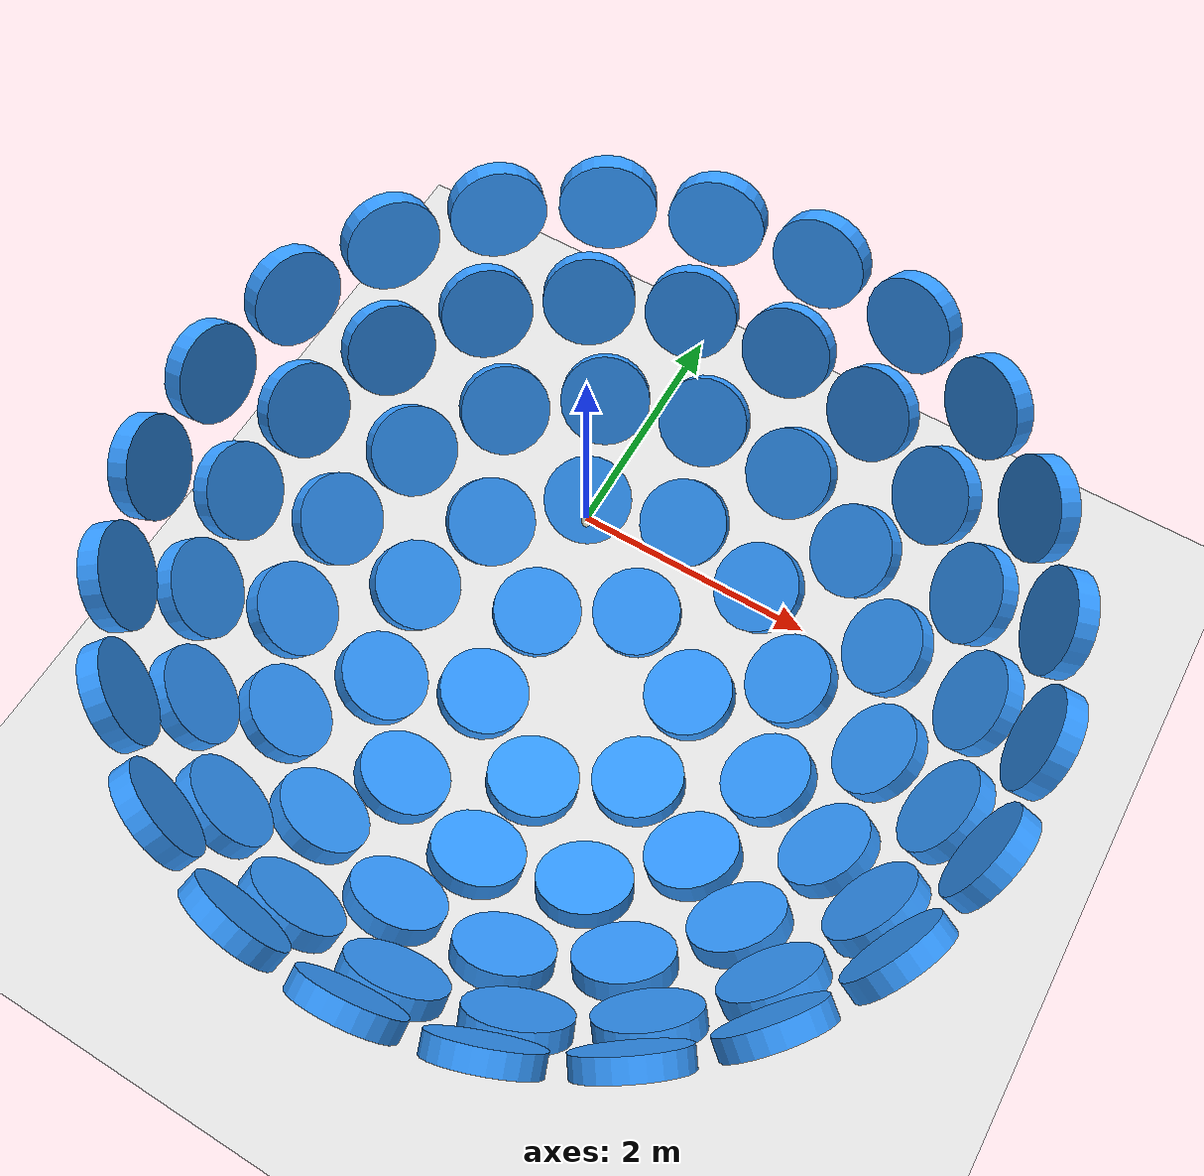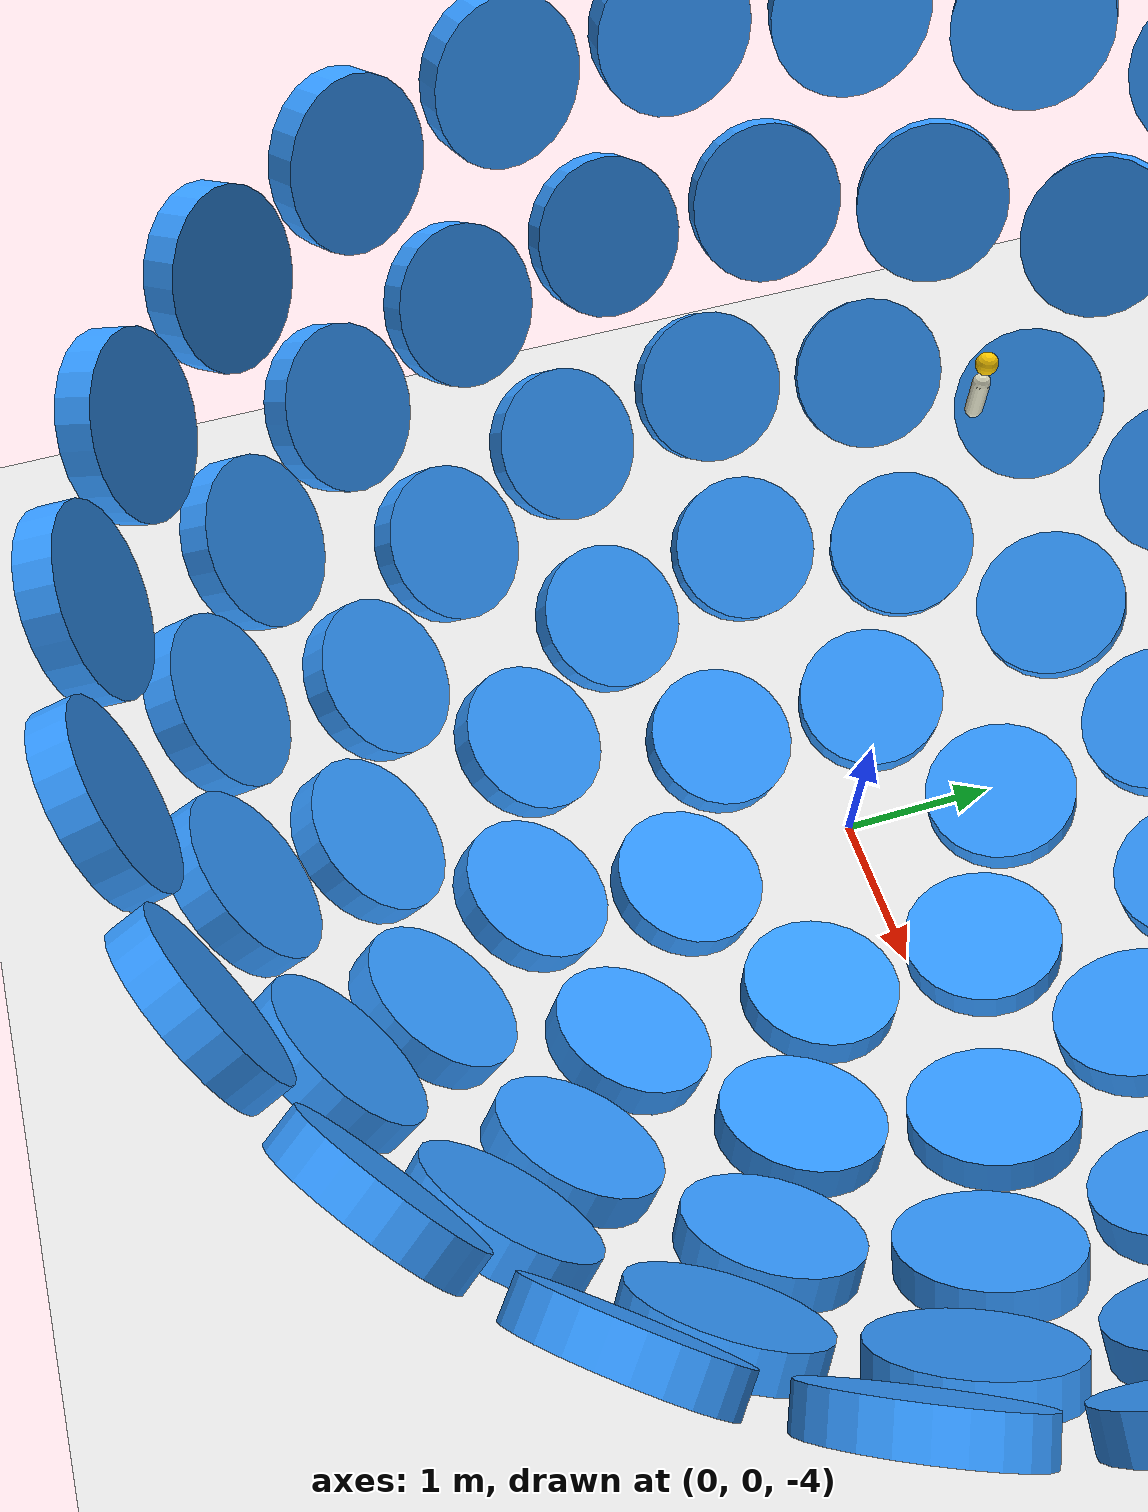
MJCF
<mujoco model="Hemisphere Ultrasonic Array">
    <compiler angle="degree"/>
    <asset>
        <material name="sensor_mat" rgba="0.2 0.6 1 1"/>
        <material name="base_mat" rgba="0.8 0.8 0.8 0.3"/>

    </asset>

    <!-- Thêm khối default này -->
    <default>
        <!-- friction="trượt xoắn lăn" -->
        <!-- Ví dụ: trượt=1.0, xoắn=0.005, lăn=0.01 -->
        <geom friction="1.0 0.005 0.1"/>
    </default>

    <worldbody>
        <light diffuse=".5 .5 .5" pos="0 0 10" dir="0 0 -1"/>
        <geom type="plane" size="10 10 0.1" rgba=".9 .9 .9 1" pos="0 0 -5.0"/>

        <body name="sensor_1" pos="0.9841 0.5682 -4.1471">
            <geom type="cylinder" size="0.50 0.10" zaxis="-0.2289 -0.1321 0.9645" material="sensor_mat"/>
            <site name="site_sensor_1" pos="0 0 0" zaxis="-0.2289 -0.1321 0.9645" size="0.05" rgba="1 0 0 1"/>
        </body>

        <body name="sensor_2" pos="0.0000 1.1363 -4.1471">
            <geom type="cylinder" size="0.50 0.10" zaxis="-0.0000 -0.2643 0.9645" material="sensor_mat"/>
            <site name="site_sensor_2" pos="0 0 0" zaxis="-0.0000 -0.2643 0.9645" size="0.05" rgba="1 0 0 1"/>
        </body>

        <body name="sensor_3" pos="-0.9841 0.5682 -4.1471">
            <geom type="cylinder" size="0.50 0.10" zaxis="0.2289 -0.1321 0.9645" material="sensor_mat"/>
            <site name="site_sensor_3" pos="0 0 0" zaxis="0.2289 -0.1321 0.9645" size="0.05" rgba="1 0 0 1"/>
        </body>

        <body name="sensor_4" pos="-0.9841 -0.5682 -4.1471">
            <geom type="cylinder" size="0.50 0.10" zaxis="0.2289 0.1321 0.9645" material="sensor_mat"/>
            <site name="site_sensor_4" pos="0 0 0" zaxis="0.2289 0.1321 0.9645" size="0.05" rgba="1 0 0 1"/>
        </body>

        <body name="sensor_5" pos="-0.0000 -1.1363 -4.1471">
            <geom type="cylinder" size="0.50 0.10" zaxis="0.0000 0.2643 0.9645" material="sensor_mat"/>
            <site name="site_sensor_5" pos="0 0 0" zaxis="0.0000 0.2643 0.9645" size="0.05" rgba="1 0 0 1"/>
        </body>

        <body name="sensor_6" pos="0.9841 -0.5682 -4.1471">
            <geom type="cylinder" size="0.50 0.10" zaxis="-0.2289 0.1321 0.9645" material="sensor_mat"/>
            <site name="site_sensor_6" pos="0 0 0" zaxis="-0.2289 0.1321 0.9645" size="0.05" rgba="1 0 0 1"/>
        </body>

        <body name="sensor_7" pos="2.1919 0.0000 -3.6994">
            <geom type="cylinder" size="0.50 0.10" zaxis="-0.5097 -0.0000 0.8603" material="sensor_mat"/>
            <site name="site_sensor_7" pos="0 0 0" zaxis="-0.5097 -0.0000 0.8603" size="0.05" rgba="1 0 0 1"/>
        </body>

        <body name="sensor_8" pos="1.8982 1.0959 -3.6994">
            <geom type="cylinder" size="0.50 0.10" zaxis="-0.4414 -0.2549 0.8603" material="sensor_mat"/>
            <site name="site_sensor_8" pos="0 0 0" zaxis="-0.4414 -0.2549 0.8603" size="0.05" rgba="1 0 0 1"/>
        </body>

        <body name="sensor_9" pos="1.0959 1.8982 -3.6994">
            <geom type="cylinder" size="0.50 0.10" zaxis="-0.2549 -0.4414 0.8603" material="sensor_mat"/>
            <site name="site_sensor_9" pos="0 0 0" zaxis="-0.2549 -0.4414 0.8603" size="0.05" rgba="1 0 0 1"/>
        </body>

        <body name="sensor_10" pos="0.0000 2.1919 -3.6994">
            <geom type="cylinder" size="0.50 0.10" zaxis="-0.0000 -0.5097 0.8603" material="sensor_mat"/>
            <site name="site_sensor_10" pos="0 0 0" zaxis="-0.0000 -0.5097 0.8603" size="0.05" rgba="1 0 0 1"/>
        </body>

        <body name="sensor_11" pos="-1.0959 1.8982 -3.6994">
            <geom type="cylinder" size="0.50 0.10" zaxis="0.2549 -0.4414 0.8603" material="sensor_mat"/>
            <site name="site_sensor_11" pos="0 0 0" zaxis="0.2549 -0.4414 0.8603" size="0.05" rgba="1 0 0 1"/>
        </body>

        <body name="sensor_12" pos="-1.8982 1.0959 -3.6994">
            <geom type="cylinder" size="0.50 0.10" zaxis="0.4414 -0.2549 0.8603" material="sensor_mat"/>
            <site name="site_sensor_12" pos="0 0 0" zaxis="0.4414 -0.2549 0.8603" size="0.05" rgba="1 0 0 1"/>
        </body>

        <body name="sensor_13" pos="-2.1919 0.0000 -3.6994">
            <geom type="cylinder" size="0.50 0.10" zaxis="0.5097 -0.0000 0.8603" material="sensor_mat"/>
            <site name="site_sensor_13" pos="0 0 0" zaxis="0.5097 -0.0000 0.8603" size="0.05" rgba="1 0 0 1"/>
        </body>

        <body name="sensor_14" pos="-1.8982 -1.0959 -3.6994">
            <geom type="cylinder" size="0.50 0.10" zaxis="0.4414 0.2549 0.8603" material="sensor_mat"/>
            <site name="site_sensor_14" pos="0 0 0" zaxis="0.4414 0.2549 0.8603" size="0.05" rgba="1 0 0 1"/>
        </body>

        <body name="sensor_15" pos="-1.0959 -1.8982 -3.6994">
            <geom type="cylinder" size="0.50 0.10" zaxis="0.2549 0.4414 0.8603" material="sensor_mat"/>
            <site name="site_sensor_15" pos="0 0 0" zaxis="0.2549 0.4414 0.8603" size="0.05" rgba="1 0 0 1"/>
        </body>

        <body name="sensor_16" pos="-0.0000 -2.1919 -3.6994">
            <geom type="cylinder" size="0.50 0.10" zaxis="0.0000 0.5097 0.8603" material="sensor_mat"/>
            <site name="site_sensor_16" pos="0 0 0" zaxis="0.0000 0.5097 0.8603" size="0.05" rgba="1 0 0 1"/>
        </body>

        <body name="sensor_17" pos="1.0959 -1.8982 -3.6994">
            <geom type="cylinder" size="0.50 0.10" zaxis="-0.2549 0.4414 0.8603" material="sensor_mat"/>
            <site name="site_sensor_17" pos="0 0 0" zaxis="-0.2549 0.4414 0.8603" size="0.05" rgba="1 0 0 1"/>
        </body>

        <body name="sensor_18" pos="1.8982 -1.0959 -3.6994">
            <geom type="cylinder" size="0.50 0.10" zaxis="-0.4414 0.2549 0.8603" material="sensor_mat"/>
            <site name="site_sensor_18" pos="0 0 0" zaxis="-0.4414 0.2549 0.8603" size="0.05" rgba="1 0 0 1"/>
        </body>

        <body name="sensor_19" pos="3.0389 0.5681 -2.9887">
            <geom type="cylinder" size="0.50 0.10" zaxis="-0.7067 -0.1321 0.6950" material="sensor_mat"/>
            <site name="site_sensor_19" pos="0 0 0" zaxis="-0.7067 -0.1321 0.6950" size="0.05" rgba="1 0 0 1"/>
        </body>

        <body name="sensor_20" pos="2.6285 1.6275 -2.9887">
            <geom type="cylinder" size="0.50 0.10" zaxis="-0.6113 -0.3785 0.6950" material="sensor_mat"/>
            <site name="site_sensor_20" pos="0 0 0" zaxis="-0.6113 -0.3785 0.6950" size="0.05" rgba="1 0 0 1"/>
        </body>

        <body name="sensor_21" pos="1.8631 2.4671 -2.9887">
            <geom type="cylinder" size="0.50 0.10" zaxis="-0.4333 -0.5738 0.6950" material="sensor_mat"/>
            <site name="site_sensor_21" pos="0 0 0" zaxis="-0.4333 -0.5738 0.6950" size="0.05" rgba="1 0 0 1"/>
        </body>

        <body name="sensor_22" pos="0.8461 2.9736 -2.9887">
            <geom type="cylinder" size="0.50 0.10" zaxis="-0.1968 -0.6915 0.6950" material="sensor_mat"/>
            <site name="site_sensor_22" pos="0 0 0" zaxis="-0.1968 -0.6915 0.6950" size="0.05" rgba="1 0 0 1"/>
        </body>

        <body name="sensor_23" pos="-0.2853 3.0784 -2.9887">
            <geom type="cylinder" size="0.50 0.10" zaxis="0.0663 -0.7159 0.6950" material="sensor_mat"/>
            <site name="site_sensor_23" pos="0 0 0" zaxis="0.0663 -0.7159 0.6950" size="0.05" rgba="1 0 0 1"/>
        </body>

        <body name="sensor_24" pos="-1.3780 2.7675 -2.9887">
            <geom type="cylinder" size="0.50 0.10" zaxis="0.3205 -0.6436 0.6950" material="sensor_mat"/>
            <site name="site_sensor_24" pos="0 0 0" zaxis="0.3205 -0.6436 0.6950" size="0.05" rgba="1 0 0 1"/>
        </body>

        <body name="sensor_25" pos="-2.2847 2.0828 -2.9887">
            <geom type="cylinder" size="0.50 0.10" zaxis="0.5313 -0.4844 0.6950" material="sensor_mat"/>
            <site name="site_sensor_25" pos="0 0 0" zaxis="0.5313 -0.4844 0.6950" size="0.05" rgba="1 0 0 1"/>
        </body>

        <body name="sensor_26" pos="-2.8828 1.1168 -2.9887">
            <geom type="cylinder" size="0.50 0.10" zaxis="0.6704 -0.2597 0.6950" material="sensor_mat"/>
            <site name="site_sensor_26" pos="0 0 0" zaxis="0.6704 -0.2597 0.6950" size="0.05" rgba="1 0 0 1"/>
        </body>

        <body name="sensor_27" pos="-3.0916 0.0000 -2.9887">
            <geom type="cylinder" size="0.50 0.10" zaxis="0.7190 -0.0000 0.6950" material="sensor_mat"/>
            <site name="site_sensor_27" pos="0 0 0" zaxis="0.7190 -0.0000 0.6950" size="0.05" rgba="1 0 0 1"/>
        </body>

        <body name="sensor_28" pos="-2.8828 -1.1168 -2.9887">
            <geom type="cylinder" size="0.50 0.10" zaxis="0.6704 0.2597 0.6950" material="sensor_mat"/>
            <site name="site_sensor_28" pos="0 0 0" zaxis="0.6704 0.2597 0.6950" size="0.05" rgba="1 0 0 1"/>
        </body>

        <body name="sensor_29" pos="-2.2847 -2.0828 -2.9887">
            <geom type="cylinder" size="0.50 0.10" zaxis="0.5313 0.4844 0.6950" material="sensor_mat"/>
            <site name="site_sensor_29" pos="0 0 0" zaxis="0.5313 0.4844 0.6950" size="0.05" rgba="1 0 0 1"/>
        </body>

        <body name="sensor_30" pos="-1.3780 -2.7675 -2.9887">
            <geom type="cylinder" size="0.50 0.10" zaxis="0.3205 0.6436 0.6950" material="sensor_mat"/>
            <site name="site_sensor_30" pos="0 0 0" zaxis="0.3205 0.6436 0.6950" size="0.05" rgba="1 0 0 1"/>
        </body>

        <body name="sensor_31" pos="-0.2853 -3.0784 -2.9887">
            <geom type="cylinder" size="0.50 0.10" zaxis="0.0663 0.7159 0.6950" material="sensor_mat"/>
            <site name="site_sensor_31" pos="0 0 0" zaxis="0.0663 0.7159 0.6950" size="0.05" rgba="1 0 0 1"/>
        </body>

        <body name="sensor_32" pos="0.8461 -2.9736 -2.9887">
            <geom type="cylinder" size="0.50 0.10" zaxis="-0.1968 0.6915 0.6950" material="sensor_mat"/>
            <site name="site_sensor_32" pos="0 0 0" zaxis="-0.1968 0.6915 0.6950" size="0.05" rgba="1 0 0 1"/>
        </body>

        <body name="sensor_33" pos="1.8631 -2.4671 -2.9887">
            <geom type="cylinder" size="0.50 0.10" zaxis="-0.4333 0.5738 0.6950" material="sensor_mat"/>
            <site name="site_sensor_33" pos="0 0 0" zaxis="-0.4333 0.5738 0.6950" size="0.05" rgba="1 0 0 1"/>
        </body>

        <body name="sensor_34" pos="2.6285 -1.6275 -2.9887">
            <geom type="cylinder" size="0.50 0.10" zaxis="-0.6113 0.3785 0.6950" material="sensor_mat"/>
            <site name="site_sensor_34" pos="0 0 0" zaxis="-0.6113 0.3785 0.6950" size="0.05" rgba="1 0 0 1"/>
        </body>

        <body name="sensor_35" pos="3.0389 -0.5681 -2.9887">
            <geom type="cylinder" size="0.50 0.10" zaxis="-0.7067 0.1321 0.6950" material="sensor_mat"/>
            <site name="site_sensor_35" pos="0 0 0" zaxis="-0.7067 0.1321 0.6950" size="0.05" rgba="1 0 0 1"/>
        </body>

        <body name="sensor_36" pos="3.7715 0.0000 -2.0654">
            <geom type="cylinder" size="0.50 0.10" zaxis="-0.8771 -0.0000 0.4803" material="sensor_mat"/>
            <site name="site_sensor_36" pos="0 0 0" zaxis="-0.8771 -0.0000 0.4803" size="0.05" rgba="1 0 0 1"/>
        </body>

        <body name="sensor_37" pos="3.6039 1.1117 -2.0654">
            <geom type="cylinder" size="0.50 0.10" zaxis="-0.8381 -0.2585 0.4803" material="sensor_mat"/>
            <site name="site_sensor_37" pos="0 0 0" zaxis="-0.8381 -0.2585 0.4803" size="0.05" rgba="1 0 0 1"/>
        </body>

        <body name="sensor_38" pos="3.1161 2.1246 -2.0654">
            <geom type="cylinder" size="0.50 0.10" zaxis="-0.7247 -0.4941 0.4803" material="sensor_mat"/>
            <site name="site_sensor_38" pos="0 0 0" zaxis="-0.7247 -0.4941 0.4803" size="0.05" rgba="1 0 0 1"/>
        </body>

        <body name="sensor_39" pos="2.3515 2.9487 -2.0654">
            <geom type="cylinder" size="0.50 0.10" zaxis="-0.5469 -0.6857 0.4803" material="sensor_mat"/>
            <site name="site_sensor_39" pos="0 0 0" zaxis="-0.5469 -0.6857 0.4803" size="0.05" rgba="1 0 0 1"/>
        </body>

        <body name="sensor_40" pos="1.3779 3.5108 -2.0654">
            <geom type="cylinder" size="0.50 0.10" zaxis="-0.3204 -0.8165 0.4803" material="sensor_mat"/>
            <site name="site_sensor_40" pos="0 0 0" zaxis="-0.3204 -0.8165 0.4803" size="0.05" rgba="1 0 0 1"/>
        </body>

        <body name="sensor_41" pos="0.2818 3.7609 -2.0654">
            <geom type="cylinder" size="0.50 0.10" zaxis="-0.0655 -0.8746 0.4803" material="sensor_mat"/>
            <site name="site_sensor_41" pos="0 0 0" zaxis="-0.0655 -0.8746 0.4803" size="0.05" rgba="1 0 0 1"/>
        </body>

        <body name="sensor_42" pos="-0.8392 3.6769 -2.0654">
            <geom type="cylinder" size="0.50 0.10" zaxis="0.1952 -0.8551 0.4803" material="sensor_mat"/>
            <site name="site_sensor_42" pos="0 0 0" zaxis="0.1952 -0.8551 0.4803" size="0.05" rgba="1 0 0 1"/>
        </body>

        <body name="sensor_43" pos="-1.8857 3.2662 -2.0654">
            <geom type="cylinder" size="0.50 0.10" zaxis="0.4385 -0.7596 0.4803" material="sensor_mat"/>
            <site name="site_sensor_43" pos="0 0 0" zaxis="0.4385 -0.7596 0.4803" size="0.05" rgba="1 0 0 1"/>
        </body>

        <body name="sensor_44" pos="-2.7647 2.5653 -2.0654">
            <geom type="cylinder" size="0.50 0.10" zaxis="0.6430 -0.5966 0.4803" material="sensor_mat"/>
            <site name="site_sensor_44" pos="0 0 0" zaxis="0.6430 -0.5966 0.4803" size="0.05" rgba="1 0 0 1"/>
        </body>

        <body name="sensor_45" pos="-3.3980 1.6364 -2.0654">
            <geom type="cylinder" size="0.50 0.10" zaxis="0.7902 -0.3806 0.4803" material="sensor_mat"/>
            <site name="site_sensor_45" pos="0 0 0" zaxis="0.7902 -0.3806 0.4803" size="0.05" rgba="1 0 0 1"/>
        </body>

        <body name="sensor_46" pos="-3.7294 0.5621 -2.0654">
            <geom type="cylinder" size="0.50 0.10" zaxis="0.8673 -0.1307 0.4803" material="sensor_mat"/>
            <site name="site_sensor_46" pos="0 0 0" zaxis="0.8673 -0.1307 0.4803" size="0.05" rgba="1 0 0 1"/>
        </body>

        <body name="sensor_47" pos="-3.7294 -0.5621 -2.0654">
            <geom type="cylinder" size="0.50 0.10" zaxis="0.8673 0.1307 0.4803" material="sensor_mat"/>
            <site name="site_sensor_47" pos="0 0 0" zaxis="0.8673 0.1307 0.4803" size="0.05" rgba="1 0 0 1"/>
        </body>

        <body name="sensor_48" pos="-3.3980 -1.6364 -2.0654">
            <geom type="cylinder" size="0.50 0.10" zaxis="0.7902 0.3806 0.4803" material="sensor_mat"/>
            <site name="site_sensor_48" pos="0 0 0" zaxis="0.7902 0.3806 0.4803" size="0.05" rgba="1 0 0 1"/>
        </body>

        <body name="sensor_49" pos="-2.7647 -2.5653 -2.0654">
            <geom type="cylinder" size="0.50 0.10" zaxis="0.6430 0.5966 0.4803" material="sensor_mat"/>
            <site name="site_sensor_49" pos="0 0 0" zaxis="0.6430 0.5966 0.4803" size="0.05" rgba="1 0 0 1"/>
        </body>

        <body name="sensor_50" pos="-1.8857 -3.2662 -2.0654">
            <geom type="cylinder" size="0.50 0.10" zaxis="0.4385 0.7596 0.4803" material="sensor_mat"/>
            <site name="site_sensor_50" pos="0 0 0" zaxis="0.4385 0.7596 0.4803" size="0.05" rgba="1 0 0 1"/>
        </body>

        <body name="sensor_51" pos="-0.8392 -3.6769 -2.0654">
            <geom type="cylinder" size="0.50 0.10" zaxis="0.1952 0.8551 0.4803" material="sensor_mat"/>
            <site name="site_sensor_51" pos="0 0 0" zaxis="0.1952 0.8551 0.4803" size="0.05" rgba="1 0 0 1"/>
        </body>

        <body name="sensor_52" pos="0.2818 -3.7609 -2.0654">
            <geom type="cylinder" size="0.50 0.10" zaxis="-0.0655 0.8746 0.4803" material="sensor_mat"/>
            <site name="site_sensor_52" pos="0 0 0" zaxis="-0.0655 0.8746 0.4803" size="0.05" rgba="1 0 0 1"/>
        </body>

        <body name="sensor_53" pos="1.3779 -3.5108 -2.0654">
            <geom type="cylinder" size="0.50 0.10" zaxis="-0.3204 0.8165 0.4803" material="sensor_mat"/>
            <site name="site_sensor_53" pos="0 0 0" zaxis="-0.3204 0.8165 0.4803" size="0.05" rgba="1 0 0 1"/>
        </body>

        <body name="sensor_54" pos="2.3515 -2.9487 -2.0654">
            <geom type="cylinder" size="0.50 0.10" zaxis="-0.5469 0.6857 0.4803" material="sensor_mat"/>
            <site name="site_sensor_54" pos="0 0 0" zaxis="-0.5469 0.6857 0.4803" size="0.05" rgba="1 0 0 1"/>
        </body>

        <body name="sensor_55" pos="3.1161 -2.1246 -2.0654">
            <geom type="cylinder" size="0.50 0.10" zaxis="-0.7247 0.4941 0.4803" material="sensor_mat"/>
            <site name="site_sensor_55" pos="0 0 0" zaxis="-0.7247 0.4941 0.4803" size="0.05" rgba="1 0 0 1"/>
        </body>

        <body name="sensor_56" pos="3.6039 -1.1117 -2.0654">
            <geom type="cylinder" size="0.50 0.10" zaxis="-0.8381 0.2585 0.4803" material="sensor_mat"/>
            <site name="site_sensor_56" pos="0 0 0" zaxis="-0.8381 0.2585 0.4803" size="0.05" rgba="1 0 0 1"/>
        </body>

        <body name="sensor_57" pos="4.1443 0.5696 -0.9953">
            <geom type="cylinder" size="0.50 0.10" zaxis="-0.9638 -0.1325 0.2315" material="sensor_mat"/>
            <site name="site_sensor_57" pos="0 0 0" zaxis="-0.9638 -0.1325 0.2315" size="0.05" rgba="1 0 0 1"/>
        </body>

        <body name="sensor_58" pos="3.8369 1.6666 -0.9953">
            <geom type="cylinder" size="0.50 0.10" zaxis="-0.8923 -0.3876 0.2315" material="sensor_mat"/>
            <site name="site_sensor_58" pos="0 0 0" zaxis="-0.8923 -0.3876 0.2315" size="0.05" rgba="1 0 0 1"/>
        </body>

        <body name="sensor_59" pos="3.2450 2.6400 -0.9953">
            <geom type="cylinder" size="0.50 0.10" zaxis="-0.7546 -0.6139 0.2315" material="sensor_mat"/>
            <site name="site_sensor_59" pos="0 0 0" zaxis="-0.7546 -0.6139 0.2315" size="0.05" rgba="1 0 0 1"/>
        </body>

        <body name="sensor_60" pos="2.4124 3.4176 -0.9953">
            <geom type="cylinder" size="0.50 0.10" zaxis="-0.5610 -0.7948 0.2315" material="sensor_mat"/>
            <site name="site_sensor_60" pos="0 0 0" zaxis="-0.5610 -0.7948 0.2315" size="0.05" rgba="1 0 0 1"/>
        </body>

        <body name="sensor_61" pos="1.4009 3.9417 -0.9953">
            <geom type="cylinder" size="0.50 0.10" zaxis="-0.3258 -0.9167 0.2315" material="sensor_mat"/>
            <site name="site_sensor_61" pos="0 0 0" zaxis="-0.3258 -0.9167 0.2315" size="0.05" rgba="1 0 0 1"/>
        </body>

        <body name="sensor_62" pos="0.2855 4.1735 -0.9953">
            <geom type="cylinder" size="0.50 0.10" zaxis="-0.0664 -0.9706 0.2315" material="sensor_mat"/>
            <site name="site_sensor_62" pos="0 0 0" zaxis="-0.0664 -0.9706 0.2315" size="0.05" rgba="1 0 0 1"/>
        </body>

        <body name="sensor_63" pos="-0.8511 4.0957 -0.9953">
            <geom type="cylinder" size="0.50 0.10" zaxis="0.1979 -0.9525 0.2315" material="sensor_mat"/>
            <site name="site_sensor_63" pos="0 0 0" zaxis="0.1979 -0.9525 0.2315" size="0.05" rgba="1 0 0 1"/>
        </body>

        <body name="sensor_64" pos="-1.9246 3.7142 -0.9953">
            <geom type="cylinder" size="0.50 0.10" zaxis="0.4476 -0.8638 0.2315" material="sensor_mat"/>
            <site name="site_sensor_64" pos="0 0 0" zaxis="0.4476 -0.8638 0.2315" size="0.05" rgba="1 0 0 1"/>
        </body>

        <body name="sensor_65" pos="-2.8553 3.0572 -0.9953">
            <geom type="cylinder" size="0.50 0.10" zaxis="0.6640 -0.7110 0.2315" material="sensor_mat"/>
            <site name="site_sensor_65" pos="0 0 0" zaxis="0.6640 -0.7110 0.2315" size="0.05" rgba="1 0 0 1"/>
        </body>

        <body name="sensor_66" pos="-3.5742 2.1735 -0.9953">
            <geom type="cylinder" size="0.50 0.10" zaxis="0.8312 -0.5055 0.2315" material="sensor_mat"/>
            <site name="site_sensor_66" pos="0 0 0" zaxis="0.8312 -0.5055 0.2315" size="0.05" rgba="1 0 0 1"/>
        </body>

        <body name="sensor_67" pos="-4.0281 1.1286 -0.9953">
            <geom type="cylinder" size="0.50 0.10" zaxis="0.9368 -0.2625 0.2315" material="sensor_mat"/>
            <site name="site_sensor_67" pos="0 0 0" zaxis="0.9368 -0.2625 0.2315" size="0.05" rgba="1 0 0 1"/>
        </body>

        <body name="sensor_68" pos="-4.1832 0.0000 -0.9953">
            <geom type="cylinder" size="0.50 0.10" zaxis="0.9728 -0.0000 0.2315" material="sensor_mat"/>
            <site name="site_sensor_68" pos="0 0 0" zaxis="0.9728 -0.0000 0.2315" size="0.05" rgba="1 0 0 1"/>
        </body>

        <body name="sensor_69" pos="-4.0281 -1.1286 -0.9953">
            <geom type="cylinder" size="0.50 0.10" zaxis="0.9368 0.2625 0.2315" material="sensor_mat"/>
            <site name="site_sensor_69" pos="0 0 0" zaxis="0.9368 0.2625 0.2315" size="0.05" rgba="1 0 0 1"/>
        </body>

        <body name="sensor_70" pos="-3.5742 -2.1735 -0.9953">
            <geom type="cylinder" size="0.50 0.10" zaxis="0.8312 0.5055 0.2315" material="sensor_mat"/>
            <site name="site_sensor_70" pos="0 0 0" zaxis="0.8312 0.5055 0.2315" size="0.05" rgba="1 0 0 1"/>
        </body>

        <body name="sensor_71" pos="-2.8553 -3.0572 -0.9953">
            <geom type="cylinder" size="0.50 0.10" zaxis="0.6640 0.7110 0.2315" material="sensor_mat"/>
            <site name="site_sensor_71" pos="0 0 0" zaxis="0.6640 0.7110 0.2315" size="0.05" rgba="1 0 0 1"/>
        </body>

        <body name="sensor_72" pos="-1.9246 -3.7142 -0.9953">
            <geom type="cylinder" size="0.50 0.10" zaxis="0.4476 0.8638 0.2315" material="sensor_mat"/>
            <site name="site_sensor_72" pos="0 0 0" zaxis="0.4476 0.8638 0.2315" size="0.05" rgba="1 0 0 1"/>
        </body>

        <body name="sensor_73" pos="-0.8511 -4.0957 -0.9953">
            <geom type="cylinder" size="0.50 0.10" zaxis="0.1979 0.9525 0.2315" material="sensor_mat"/>
            <site name="site_sensor_73" pos="0 0 0" zaxis="0.1979 0.9525 0.2315" size="0.05" rgba="1 0 0 1"/>
        </body>

        <body name="sensor_74" pos="0.2855 -4.1735 -0.9953">
            <geom type="cylinder" size="0.50 0.10" zaxis="-0.0664 0.9706 0.2315" material="sensor_mat"/>
            <site name="site_sensor_74" pos="0 0 0" zaxis="-0.0664 0.9706 0.2315" size="0.05" rgba="1 0 0 1"/>
        </body>

        <body name="sensor_75" pos="1.4009 -3.9417 -0.9953">
            <geom type="cylinder" size="0.50 0.10" zaxis="-0.3258 0.9167 0.2315" material="sensor_mat"/>
            <site name="site_sensor_75" pos="0 0 0" zaxis="-0.3258 0.9167 0.2315" size="0.05" rgba="1 0 0 1"/>
        </body>

        <body name="sensor_76" pos="2.4124 -3.4176 -0.9953">
            <geom type="cylinder" size="0.50 0.10" zaxis="-0.5610 0.7948 0.2315" material="sensor_mat"/>
            <site name="site_sensor_76" pos="0 0 0" zaxis="-0.5610 0.7948 0.2315" size="0.05" rgba="1 0 0 1"/>
        </body>

        <body name="sensor_77" pos="3.2450 -2.6400 -0.9953">
            <geom type="cylinder" size="0.50 0.10" zaxis="-0.7546 0.6139 0.2315" material="sensor_mat"/>
            <site name="site_sensor_77" pos="0 0 0" zaxis="-0.7546 0.6139 0.2315" size="0.05" rgba="1 0 0 1"/>
        </body>

        <body name="sensor_78" pos="3.8369 -1.6666 -0.9953">
            <geom type="cylinder" size="0.50 0.10" zaxis="-0.8923 0.3876 0.2315" material="sensor_mat"/>
            <site name="site_sensor_78" pos="0 0 0" zaxis="-0.8923 0.3876 0.2315" size="0.05" rgba="1 0 0 1"/>
        </body>

        <body name="sensor_79" pos="4.1443 -0.5696 -0.9953">
            <geom type="cylinder" size="0.50 0.10" zaxis="-0.9638 0.1325 0.2315" material="sensor_mat"/>
            <site name="site_sensor_79" pos="0 0 0" zaxis="-0.9638 0.1325 0.2315" size="0.05" rgba="1 0 0 1"/>
        </body>

        <body name="test_rice" pos="0 0 0.01">
            <freejoint/>
            <!-- Capsule size in MuJoCo is "radius half-length" -->
            <!-- 1mm radius (2mm wide) and 2.5mm half-length (5mm cylinder + 2mm caps = 7mm total length) -->

            <geom type="capsule" size="0.04 0.08" mass="0.0001" rgba="0.9 0.9 0.8 1"/>
        </body>

        <body name="test_ball" pos="0 0 0.2">
            <!-- freejoint makes it dynamic so it falls under gravity -->
            <freejoint/>
            <!-- size is the radius in meters (5cm)(scaling up), mass is in kg (1 gram) -->
            <geom type="sphere" size="0.05" mass="0.001" rgba="1 0.8 0 1"/>
        </body>

    </worldbody>

    <sensor>
        <rangefinder name="ultra_1" site="site_sensor_1" cutoff="3.0" noise="0.01"/>
        <rangefinder name="ultra_2" site="site_sensor_2" cutoff="3.0" noise="0.01"/>
        <rangefinder name="ultra_3" site="site_sensor_3" cutoff="3.0" noise="0.01"/>
        <rangefinder name="ultra_4" site="site_sensor_4" cutoff="3.0" noise="0.01"/>
        <rangefinder name="ultra_5" site="site_sensor_5" cutoff="3.0" noise="0.01"/>
        <rangefinder name="ultra_6" site="site_sensor_6" cutoff="3.0" noise="0.01"/>
        <rangefinder name="ultra_7" site="site_sensor_7" cutoff="3.0" noise="0.01"/>
        <rangefinder name="ultra_8" site="site_sensor_8" cutoff="3.0" noise="0.01"/>
        <rangefinder name="ultra_9" site="site_sensor_9" cutoff="3.0" noise="0.01"/>
        <rangefinder name="ultra_10" site="site_sensor_10" cutoff="3.0" noise="0.01"/>
        <rangefinder name="ultra_11" site="site_sensor_11" cutoff="3.0" noise="0.01"/>
        <rangefinder name="ultra_12" site="site_sensor_12" cutoff="3.0" noise="0.01"/>
        <rangefinder name="ultra_13" site="site_sensor_13" cutoff="3.0" noise="0.01"/>
        <rangefinder name="ultra_14" site="site_sensor_14" cutoff="3.0" noise="0.01"/>
        <rangefinder name="ultra_15" site="site_sensor_15" cutoff="3.0" noise="0.01"/>
        <rangefinder name="ultra_16" site="site_sensor_16" cutoff="3.0" noise="0.01"/>
        <rangefinder name="ultra_17" site="site_sensor_17" cutoff="3.0" noise="0.01"/>
        <rangefinder name="ultra_18" site="site_sensor_18" cutoff="3.0" noise="0.01"/>
        <rangefinder name="ultra_19" site="site_sensor_19" cutoff="3.0" noise="0.01"/>
        <rangefinder name="ultra_20" site="site_sensor_20" cutoff="3.0" noise="0.01"/>
        <rangefinder name="ultra_21" site="site_sensor_21" cutoff="3.0" noise="0.01"/>
        <rangefinder name="ultra_22" site="site_sensor_22" cutoff="3.0" noise="0.01"/>
        <rangefinder name="ultra_23" site="site_sensor_23" cutoff="3.0" noise="0.01"/>
        <rangefinder name="ultra_24" site="site_sensor_24" cutoff="3.0" noise="0.01"/>
        <rangefinder name="ultra_25" site="site_sensor_25" cutoff="3.0" noise="0.01"/>
        <rangefinder name="ultra_26" site="site_sensor_26" cutoff="3.0" noise="0.01"/>
        <rangefinder name="ultra_27" site="site_sensor_27" cutoff="3.0" noise="0.01"/>
        <rangefinder name="ultra_28" site="site_sensor_28" cutoff="3.0" noise="0.01"/>
        <rangefinder name="ultra_29" site="site_sensor_29" cutoff="3.0" noise="0.01"/>
        <rangefinder name="ultra_30" site="site_sensor_30" cutoff="3.0" noise="0.01"/>
        <rangefinder name="ultra_31" site="site_sensor_31" cutoff="3.0" noise="0.01"/>
        <rangefinder name="ultra_32" site="site_sensor_32" cutoff="3.0" noise="0.01"/>
        <rangefinder name="ultra_33" site="site_sensor_33" cutoff="3.0" noise="0.01"/>
        <rangefinder name="ultra_34" site="site_sensor_34" cutoff="3.0" noise="0.01"/>
        <rangefinder name="ultra_35" site="site_sensor_35" cutoff="3.0" noise="0.01"/>
        <rangefinder name="ultra_36" site="site_sensor_36" cutoff="3.0" noise="0.01"/>
        <rangefinder name="ultra_37" site="site_sensor_37" cutoff="3.0" noise="0.01"/>
        <rangefinder name="ultra_38" site="site_sensor_38" cutoff="3.0" noise="0.01"/>
        <rangefinder name="ultra_39" site="site_sensor_39" cutoff="3.0" noise="0.01"/>
        <rangefinder name="ultra_40" site="site_sensor_40" cutoff="3.0" noise="0.01"/>
        <rangefinder name="ultra_41" site="site_sensor_41" cutoff="3.0" noise="0.01"/>
        <rangefinder name="ultra_42" site="site_sensor_42" cutoff="3.0" noise="0.01"/>
        <rangefinder name="ultra_43" site="site_sensor_43" cutoff="3.0" noise="0.01"/>
        <rangefinder name="ultra_44" site="site_sensor_44" cutoff="3.0" noise="0.01"/>
        <rangefinder name="ultra_45" site="site_sensor_45" cutoff="3.0" noise="0.01"/>
        <rangefinder name="ultra_46" site="site_sensor_46" cutoff="3.0" noise="0.01"/>
        <rangefinder name="ultra_47" site="site_sensor_47" cutoff="3.0" noise="0.01"/>
        <rangefinder name="ultra_48" site="site_sensor_48" cutoff="3.0" noise="0.01"/>
        <rangefinder name="ultra_49" site="site_sensor_49" cutoff="3.0" noise="0.01"/>
        <rangefinder name="ultra_50" site="site_sensor_50" cutoff="3.0" noise="0.01"/>
        <rangefinder name="ultra_51" site="site_sensor_51" cutoff="3.0" noise="0.01"/>
        <rangefinder name="ultra_52" site="site_sensor_52" cutoff="3.0" noise="0.01"/>
        <rangefinder name="ultra_53" site="site_sensor_53" cutoff="3.0" noise="0.01"/>
        <rangefinder name="ultra_54" site="site_sensor_54" cutoff="3.0" noise="0.01"/>
        <rangefinder name="ultra_55" site="site_sensor_55" cutoff="3.0" noise="0.01"/>
        <rangefinder name="ultra_56" site="site_sensor_56" cutoff="3.0" noise="0.01"/>
        <rangefinder name="ultra_57" site="site_sensor_57" cutoff="3.0" noise="0.01"/>
        <rangefinder name="ultra_58" site="site_sensor_58" cutoff="3.0" noise="0.01"/>
        <rangefinder name="ultra_59" site="site_sensor_59" cutoff="3.0" noise="0.01"/>
        <rangefinder name="ultra_60" site="site_sensor_60" cutoff="3.0" noise="0.01"/>
        <rangefinder name="ultra_61" site="site_sensor_61" cutoff="3.0" noise="0.01"/>
        <rangefinder name="ultra_62" site="site_sensor_62" cutoff="3.0" noise="0.01"/>
        <rangefinder name="ultra_63" site="site_sensor_63" cutoff="3.0" noise="0.01"/>
        <rangefinder name="ultra_64" site="site_sensor_64" cutoff="3.0" noise="0.01"/>
        <rangefinder name="ultra_65" site="site_sensor_65" cutoff="3.0" noise="0.01"/>
        <rangefinder name="ultra_66" site="site_sensor_66" cutoff="3.0" noise="0.01"/>
        <rangefinder name="ultra_67" site="site_sensor_67" cutoff="3.0" noise="0.01"/>
        <rangefinder name="ultra_68" site="site_sensor_68" cutoff="3.0" noise="0.01"/>
        <rangefinder name="ultra_69" site="site_sensor_69" cutoff="3.0" noise="0.01"/>
        <rangefinder name="ultra_70" site="site_sensor_70" cutoff="3.0" noise="0.01"/>
        <rangefinder name="ultra_71" site="site_sensor_71" cutoff="3.0" noise="0.01"/>
        <rangefinder name="ultra_72" site="site_sensor_72" cutoff="3.0" noise="0.01"/>
        <rangefinder name="ultra_73" site="site_sensor_73" cutoff="3.0" noise="0.01"/>
        <rangefinder name="ultra_74" site="site_sensor_74" cutoff="3.0" noise="0.01"/>
        <rangefinder name="ultra_75" site="site_sensor_75" cutoff="3.0" noise="0.01"/>
        <rangefinder name="ultra_76" site="site_sensor_76" cutoff="3.0" noise="0.01"/>
        <rangefinder name="ultra_77" site="site_sensor_77" cutoff="3.0" noise="0.01"/>
        <rangefinder name="ultra_78" site="site_sensor_78" cutoff="3.0" noise="0.01"/>
        <rangefinder name="ultra_79" site="site_sensor_79" cutoff="3.0" noise="0.01"/>
    </sensor>

</mujoco>
